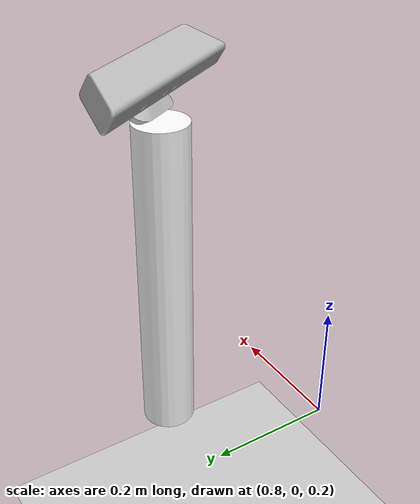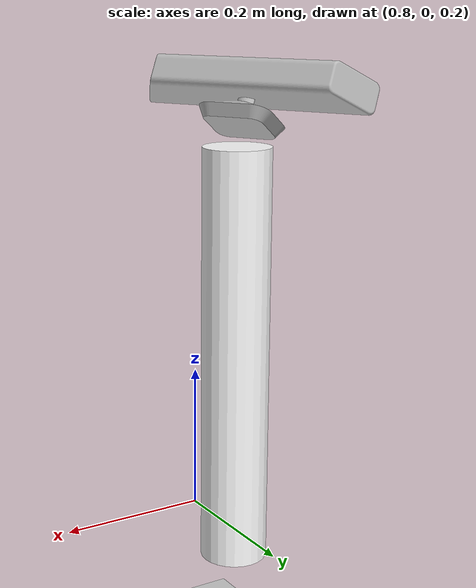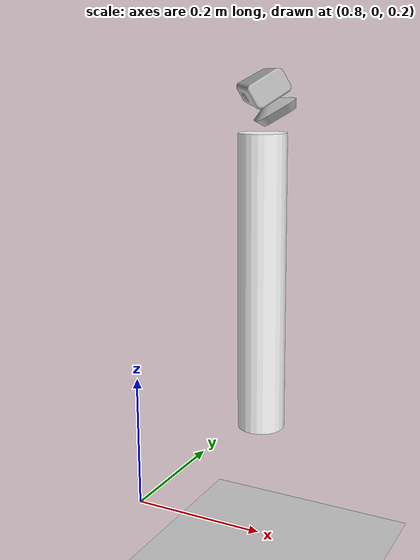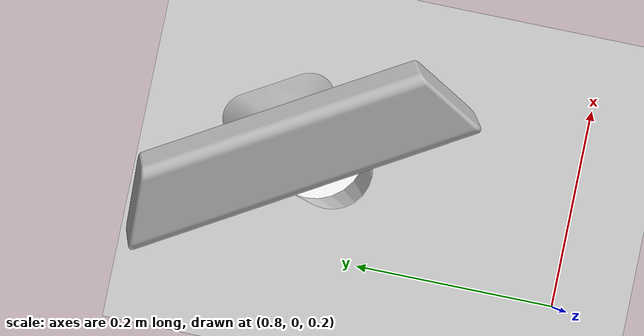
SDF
<sdf version="1.4">
  <world name="default">
    <!-- A global light source -->
    <include>
      <uri>model://sun</uri>
    </include>

    <!-- A ground plane -->
    <include>
      <uri>model://ground_plane</uri>
    </include>

    <physics type="ode">
      <real_time_update_rate>1000.0</real_time_update_rate>
      <max_step_size>0.001</max_step_size>
      <real_time_factor>1</real_time_factor>
      <ode>
        <solver>
          <type>quick</type>
          <iters>150</iters>
          <precon_iters>0</precon_iters>
          <sor>1.400000</sor>
          <use_dynamic_moi_rescaling>1</use_dynamic_moi_rescaling>
        </solver>
        <constraints>
          <cfm>0.00001</cfm>
          <erp>0.2</erp>
          <contact_max_correcting_vel>2000.000000</contact_max_correcting_vel>
          <contact_surface_layer>0.01000</contact_surface_layer>
        </constraints>
      </ode>
    </physics>

    <scene>
      <ambient>0.4 0.4 0.4 1</ambient>
      <background>0.7 0.7 0.7 1</background>
      <shadows>true</shadows>
    </scene>

    <gui fullscreen='0'>
      <camera name='user_camera'>
        <pose> 2.0 -2.0 1.2 0.0 0.275643 2.356190 </pose>
        <view_controller>orbit</view_controller>
      </camera>
    </gui>

    <model name='kinect'>
      <static>1</static>
      <pose frame=''>0.85931 0.242068 0.805 0 0.523599 -2.6122</pose>
      <link name='link'>
        <inertial>
          <mass>0.1</mass>
          <inertia>
            <ixx>1</ixx>
            <ixy>0</ixy>
            <ixz>0</ixz>
            <iyy>1</iyy>
            <iyz>0</iyz>
            <izz>1</izz>
          </inertia>
        </inertial>
        <collision name='collision'>
          <geometry>
            <box>
              <size>0.073 0.276 0.072</size>
            </box>
          </geometry>
          <max_contacts>10</max_contacts>
          <surface>
            <contact>
              <ode/>
            </contact>
            <bounce/>
            <friction>
              <torsional>
                <ode/>
              </torsional>
              <ode/>
            </friction>
          </surface>
        </collision>
        <visual name='visual'>
          <geometry>
            <mesh>
              <uri>model://kinect/meshes/kinect.dae</uri>
              <scale>1 1 1</scale>
            </mesh>
          </geometry>
        </visual>
        <sensor name='camera' type='depth'>
          <update_rate>20</update_rate>
          <camera name='__default__'>
            <horizontal_fov>1.0472</horizontal_fov>
            <image>
              <width>640</width>
              <height>480</height>
              <format>R8G8B8</format>
            </image>
            <clip>
              <near>0.05</near>
              <far>3</far>
            </clip>
          </camera>
          <plugin filename="libgazebo_ros_openni_kinect.so" name="kinect_camera_controller">
          <cameraName>camera</cameraName>
          <alwaysOn>true</alwaysOn>
          <updateRate>10</updateRate>
          <imageTopicName>rgb/image_raw</imageTopicName>
          <depthImageTopicName>depth/image_raw</depthImageTopicName>
          <pointCloudTopicName>depth/points</pointCloudTopicName>
          <cameraInfoTopicName>rgb/camera_info</cameraInfoTopicName>
          <depthImageCameraInfoTopicName>depth/camera_info</depthImageCameraInfoTopicName>
          <frameName>camera_depth_optical_frame</frameName>
          <baseline>0.1</baseline>
          <distortion_k1>0.0</distortion_k1>
          <distortion_k2>0.0</distortion_k2>
          <distortion_k3>0.0</distortion_k3>
          <distortion_t1>0.0</distortion_t1>
          <distortion_t2>0.0</distortion_t2>
          <pointCloudCutoff>0.4</pointCloudCutoff>
          <robotNamespace>/</robotNamespace>
        </plugin>
        </sensor>
        <self_collide>0</self_collide>
        <kinematic>0</kinematic>
      </link>
    </model>
    <model name='kinect_pilar'>
      <static>1</static>
      <pose frame=''>0.89 0.242 0.5 0 -0 0</pose>
      <link name='link'>
        <inertial>
          <mass>1</mass>
          <inertia>
            <ixx>0.145833</ixx>
            <ixy>0</ixy>
            <ixz>0</ixz>
            <iyy>0.145833</iyy>
            <iyz>0</iyz>
            <izz>0.125</izz>
          </inertia>
        </inertial>
        <collision name='collision'>
          <geometry>
            <cylinder>
              <radius>0.04</radius>
              <length>0.5</length>
            </cylinder>
          </geometry>
          <max_contacts>10</max_contacts>
          <surface>
            <contact>
              <ode/>
            </contact>
            <bounce/>
            <friction>
              <torsional>
                <ode/>
              </torsional>
              <ode/>
            </friction>
          </surface>
        </collision>
        <visual name='visual'>
          <geometry>
            <cylinder>
              <radius>0.04</radius>
              <length>0.5</length>
            </cylinder>
          </geometry>
          <material>
            <script>
              <uri>file://media/materials/scripts/gazebo.material</uri>
              <name>Gazebo/Metal</name>
            </script>
            <ambient>1 1 1 1</ambient>
          </material>
        </visual>
        <self_collide>0</self_collide>
        <kinematic>0</kinematic>
      </link>
    </model>

  </world>
</sdf>
